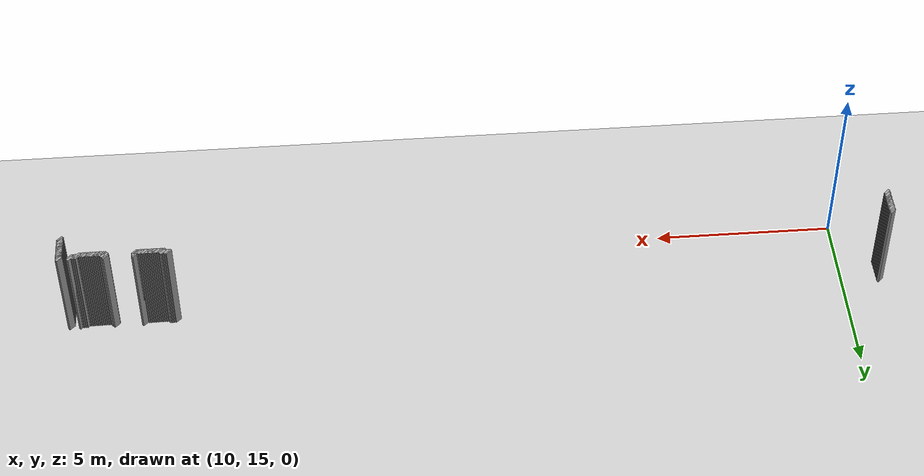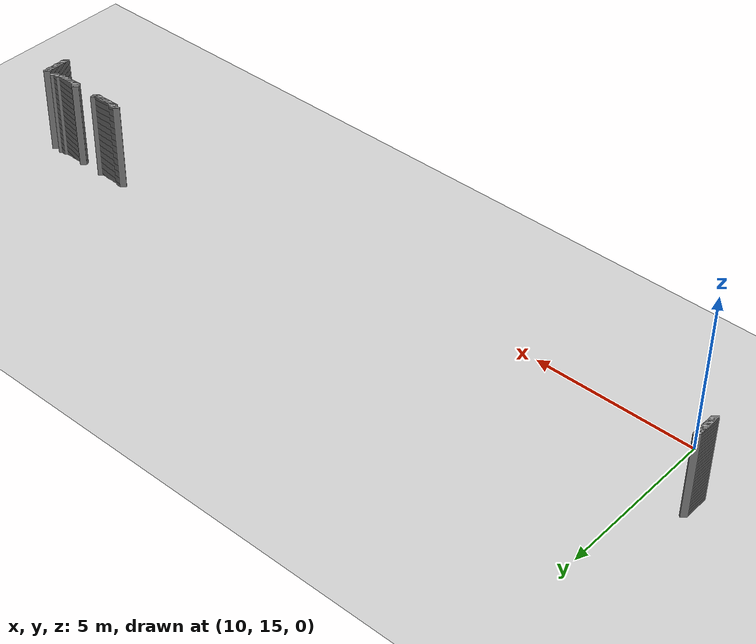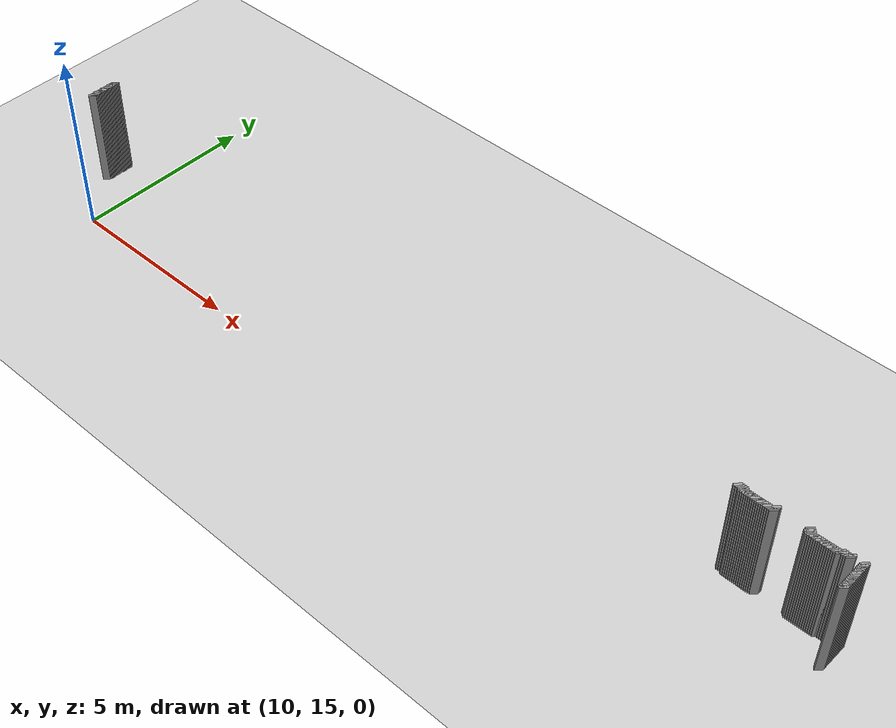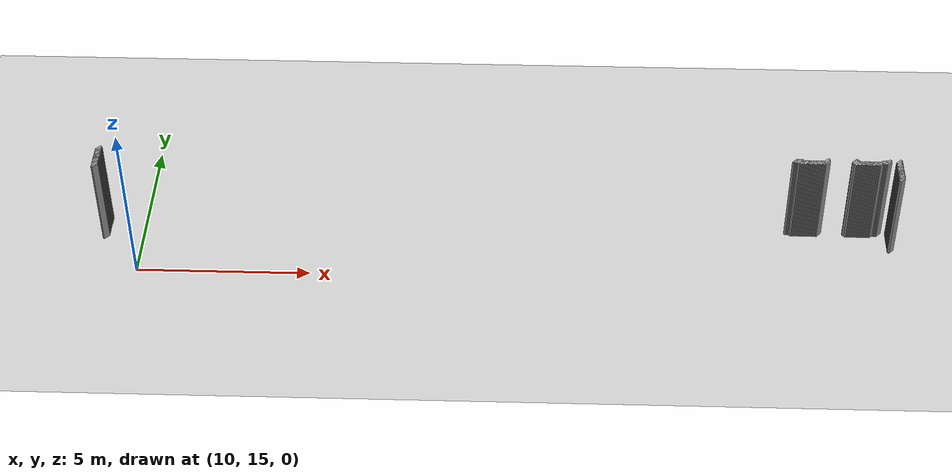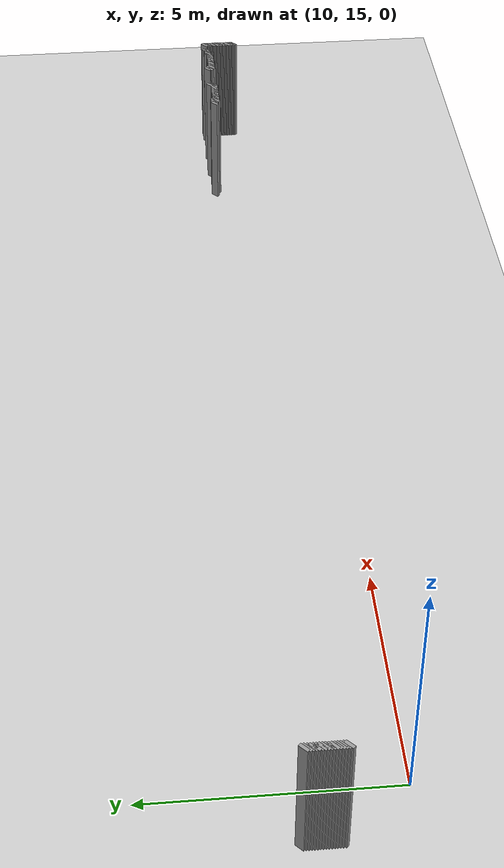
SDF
<sdf version="1.5">
 <world name="default">
  <include><uri>model://ground_plane</uri></include>
  <include><uri>model://sun</uri></include>
  <model name="grey_wall_1026">
   <static>1</static>
   <link name="link">
    <pose>29.7 17.15  1.4 0 0 -0.785398163397</pose>
    <collision name="collision"><geometry><box><size>0.0707106781187 .2  2.8</size></box></geometry></collision>
    <visual name="visual">
     <cast_shadows>0</cast_shadows>
     <geometry><box><size>0.0707106781187 .2  2.8</size></box></geometry>
     <material>
      <script>
       <uri>model://grey_wall/materials/scripts</uri>
       <uri>model://grey_wall/materials/textures</uri>
       <name>vrc/grey_wall</name>
      </script>
     </material>
    </visual>
   </link>
  </model>
  <model name="grey_wall_1027">
   <static>1</static>
   <link name="link">
    <pose>30.5 17.15  1.4 0 0 -0.785398163397</pose>
    <collision name="collision"><geometry><box><size>0.0707106781187 .2  2.8</size></box></geometry></collision>
    <visual name="visual">
     <cast_shadows>0</cast_shadows>
     <geometry><box><size>0.0707106781187 .2  2.8</size></box></geometry>
     <material>
      <script>
       <uri>model://grey_wall/materials/scripts</uri>
       <uri>model://grey_wall/materials/textures</uri>
       <name>vrc/grey_wall</name>
      </script>
     </material>
    </visual>
   </link>
  </model>
  <model name="grey_wall_1028">
   <static>1</static>
   <link name="link">
    <pose>31.45 17.15  1.4 0 0 -0.785398163397</pose>
    <collision name="collision"><geometry><box><size>0.0707106781187 .2  2.8</size></box></geometry></collision>
    <visual name="visual">
     <cast_shadows>0</cast_shadows>
     <geometry><box><size>0.0707106781187 .2  2.8</size></box></geometry>
     <material>
      <script>
       <uri>model://grey_wall/materials/scripts</uri>
       <uri>model://grey_wall/materials/textures</uri>
       <name>vrc/grey_wall</name>
      </script>
     </material>
    </visual>
   </link>
  </model>
  <model name="grey_wall_1029">
   <static>1</static>
   <link name="link">
    <pose>31.75 17.15  1.4 0 0 -0.785398163397</pose>
    <collision name="collision"><geometry><box><size>0.0707106781187 .2  2.8</size></box></geometry></collision>
    <visual name="visual">
     <cast_shadows>0</cast_shadows>
     <geometry><box><size>0.0707106781187 .2  2.8</size></box></geometry>
     <material>
      <script>
       <uri>model://grey_wall/materials/scripts</uri>
       <uri>model://grey_wall/materials/textures</uri>
       <name>vrc/grey_wall</name>
      </script>
     </material>
    </visual>
   </link>
  </model>
  <model name="grey_wall_1030">
   <static>1</static>
   <link name="link">
    <pose>8.9 17.1  1.4 0 0 -0.785398163397</pose>
    <collision name="collision"><geometry><box><size>0.0707106781187 .2  2.8</size></box></geometry></collision>
    <visual name="visual">
     <cast_shadows>0</cast_shadows>
     <geometry><box><size>0.0707106781187 .2  2.8</size></box></geometry>
     <material>
      <script>
       <uri>model://grey_wall/materials/scripts</uri>
       <uri>model://grey_wall/materials/textures</uri>
       <name>vrc/grey_wall</name>
      </script>
     </material>
    </visual>
   </link>
  </model>
  <model name="grey_wall_1031">
   <static>1</static>
   <link name="link">
    <pose>28.8 17.1  1.4 0 0 -0.785398163397</pose>
    <collision name="collision"><geometry><box><size>0.0707106781187 .2  2.8</size></box></geometry></collision>
    <visual name="visual">
     <cast_shadows>0</cast_shadows>
     <geometry><box><size>0.0707106781187 .2  2.8</size></box></geometry>
     <material>
      <script>
       <uri>model://grey_wall/materials/scripts</uri>
       <uri>model://grey_wall/materials/textures</uri>
       <name>vrc/grey_wall</name>
      </script>
     </material>
    </visual>
   </link>
  </model>
  <model name="grey_wall_1032">
   <static>1</static>
   <link name="link">
    <pose>28.85 17.1  1.4 0 0 -0.785398163397</pose>
    <collision name="collision"><geometry><box><size>0.0707106781187 .2  2.8</size></box></geometry></collision>
    <visual name="visual">
     <cast_shadows>0</cast_shadows>
     <geometry><box><size>0.0707106781187 .2  2.8</size></box></geometry>
     <material>
      <script>
       <uri>model://grey_wall/materials/scripts</uri>
       <uri>model://grey_wall/materials/textures</uri>
       <name>vrc/grey_wall</name>
      </script>
     </material>
    </visual>
   </link>
  </model>
  <model name="grey_wall_1033">
   <static>1</static>
   <link name="link">
    <pose>28.9 17.1  1.4 0 0 -0.785398163397</pose>
    <collision name="collision"><geometry><box><size>0.0707106781187 .2  2.8</size></box></geometry></collision>
    <visual name="visual">
     <cast_shadows>0</cast_shadows>
     <geometry><box><size>0.0707106781187 .2  2.8</size></box></geometry>
     <material>
      <script>
       <uri>model://grey_wall/materials/scripts</uri>
       <uri>model://grey_wall/materials/textures</uri>
       <name>vrc/grey_wall</name>
      </script>
     </material>
    </visual>
   </link>
  </model>
  <model name="grey_wall_1034">
   <static>1</static>
   <link name="link">
    <pose>28.95 17.1  1.4 0 0 -0.785398163397</pose>
    <collision name="collision"><geometry><box><size>0.0707106781187 .2  2.8</size></box></geometry></collision>
    <visual name="visual">
     <cast_shadows>0</cast_shadows>
     <geometry><box><size>0.0707106781187 .2  2.8</size></box></geometry>
     <material>
      <script>
       <uri>model://grey_wall/materials/scripts</uri>
       <uri>model://grey_wall/materials/textures</uri>
       <name>vrc/grey_wall</name>
      </script>
     </material>
    </visual>
   </link>
  </model>
  <model name="grey_wall_1035">
   <static>1</static>
   <link name="link">
    <pose>29.7 17.1  1.4 0 0 -0.785398163397</pose>
    <collision name="collision"><geometry><box><size>0.0707106781187 .2  2.8</size></box></geometry></collision>
    <visual name="visual">
     <cast_shadows>0</cast_shadows>
     <geometry><box><size>0.0707106781187 .2  2.8</size></box></geometry>
     <material>
      <script>
       <uri>model://grey_wall/materials/scripts</uri>
       <uri>model://grey_wall/materials/textures</uri>
       <name>vrc/grey_wall</name>
      </script>
     </material>
    </visual>
   </link>
  </model>
  <model name="grey_wall_1036">
   <static>1</static>
   <link name="link">
    <pose>30.5 17.1  1.4 0 0 -0.785398163397</pose>
    <collision name="collision"><geometry><box><size>0.0707106781187 .2  2.8</size></box></geometry></collision>
    <visual name="visual">
     <cast_shadows>0</cast_shadows>
     <geometry><box><size>0.0707106781187 .2  2.8</size></box></geometry>
     <material>
      <script>
       <uri>model://grey_wall/materials/scripts</uri>
       <uri>model://grey_wall/materials/textures</uri>
       <name>vrc/grey_wall</name>
      </script>
     </material>
    </visual>
   </link>
  </model>
  <model name="grey_wall_1037">
   <static>1</static>
   <link name="link">
    <pose>30.55 17.1  1.4 0 0 -0.785398163397</pose>
    <collision name="collision"><geometry><box><size>0.0707106781187 .2  2.8</size></box></geometry></collision>
    <visual name="visual">
     <cast_shadows>0</cast_shadows>
     <geometry><box><size>0.0707106781187 .2  2.8</size></box></geometry>
     <material>
      <script>
       <uri>model://grey_wall/materials/scripts</uri>
       <uri>model://grey_wall/materials/textures</uri>
       <name>vrc/grey_wall</name>
      </script>
     </material>
    </visual>
   </link>
  </model>
  <model name="grey_wall_1038">
   <static>1</static>
   <link name="link">
    <pose>31.25 17.1  1.4 0 0 -0.785398163397</pose>
    <collision name="collision"><geometry><box><size>0.0707106781187 .2  2.8</size></box></geometry></collision>
    <visual name="visual">
     <cast_shadows>0</cast_shadows>
     <geometry><box><size>0.0707106781187 .2  2.8</size></box></geometry>
     <material>
      <script>
       <uri>model://grey_wall/materials/scripts</uri>
       <uri>model://grey_wall/materials/textures</uri>
       <name>vrc/grey_wall</name>
      </script>
     </material>
    </visual>
   </link>
  </model>
  <model name="grey_wall_1039">
   <static>1</static>
   <link name="link">
    <pose>31.3 17.1  1.4 0 0 -0.785398163397</pose>
    <collision name="collision"><geometry><box><size>0.0707106781187 .2  2.8</size></box></geometry></collision>
    <visual name="visual">
     <cast_shadows>0</cast_shadows>
     <geometry><box><size>0.0707106781187 .2  2.8</size></box></geometry>
     <material>
      <script>
       <uri>model://grey_wall/materials/scripts</uri>
       <uri>model://grey_wall/materials/textures</uri>
       <name>vrc/grey_wall</name>
      </script>
     </material>
    </visual>
   </link>
  </model>
  <model name="grey_wall_1040">
   <static>1</static>
   <link name="link">
    <pose>31.35 17.1  1.4 0 0 -0.785398163397</pose>
    <collision name="collision"><geometry><box><size>0.0707106781187 .2  2.8</size></box></geometry></collision>
    <visual name="visual">
     <cast_shadows>0</cast_shadows>
     <geometry><box><size>0.0707106781187 .2  2.8</size></box></geometry>
     <material>
      <script>
       <uri>model://grey_wall/materials/scripts</uri>
       <uri>model://grey_wall/materials/textures</uri>
       <name>vrc/grey_wall</name>
      </script>
     </material>
    </visual>
   </link>
  </model>
  <model name="grey_wall_1041">
   <static>1</static>
   <link name="link">
    <pose>31.4 17.1  1.4 0 0 -0.785398163397</pose>
    <collision name="collision"><geometry><box><size>0.0707106781187 .2  2.8</size></box></geometry></collision>
    <visual name="visual">
     <cast_shadows>0</cast_shadows>
     <geometry><box><size>0.0707106781187 .2  2.8</size></box></geometry>
     <material>
      <script>
       <uri>model://grey_wall/materials/scripts</uri>
       <uri>model://grey_wall/materials/textures</uri>
       <name>vrc/grey_wall</name>
      </script>
     </material>
    </visual>
   </link>
  </model>
  <model name="grey_wall_1042">
   <static>1</static>
   <link name="link">
    <pose>31.45 17.1  1.4 0 0 -0.785398163397</pose>
    <collision name="collision"><geometry><box><size>0.0707106781187 .2  2.8</size></box></geometry></collision>
    <visual name="visual">
     <cast_shadows>0</cast_shadows>
     <geometry><box><size>0.0707106781187 .2  2.8</size></box></geometry>
     <material>
      <script>
       <uri>model://grey_wall/materials/scripts</uri>
       <uri>model://grey_wall/materials/textures</uri>
       <name>vrc/grey_wall</name>
      </script>
     </material>
    </visual>
   </link>
  </model>
  <model name="grey_wall_1043">
   <static>1</static>
   <link name="link">
    <pose>31.75 17.1  1.4 0 0 -0.785398163397</pose>
    <collision name="collision"><geometry><box><size>0.0707106781187 .2  2.8</size></box></geometry></collision>
    <visual name="visual">
     <cast_shadows>0</cast_shadows>
     <geometry><box><size>0.0707106781187 .2  2.8</size></box></geometry>
     <material>
      <script>
       <uri>model://grey_wall/materials/scripts</uri>
       <uri>model://grey_wall/materials/textures</uri>
       <name>vrc/grey_wall</name>
      </script>
     </material>
    </visual>
   </link>
  </model>
  <model name="grey_wall_1044">
   <static>1</static>
   <link name="link">
    <pose>8.9 17.05  1.4 0 0 -0.785398163397</pose>
    <collision name="collision"><geometry><box><size>0.0707106781187 .2  2.8</size></box></geometry></collision>
    <visual name="visual">
     <cast_shadows>0</cast_shadows>
     <geometry><box><size>0.0707106781187 .2  2.8</size></box></geometry>
     <material>
      <script>
       <uri>model://grey_wall/materials/scripts</uri>
       <uri>model://grey_wall/materials/textures</uri>
       <name>vrc/grey_wall</name>
      </script>
     </material>
    </visual>
   </link>
  </model>
  <model name="grey_wall_1045">
   <static>1</static>
   <link name="link">
    <pose>28.95 17.05  1.4 0 0 -0.785398163397</pose>
    <collision name="collision"><geometry><box><size>0.0707106781187 .2  2.8</size></box></geometry></collision>
    <visual name="visual">
     <cast_shadows>0</cast_shadows>
     <geometry><box><size>0.0707106781187 .2  2.8</size></box></geometry>
     <material>
      <script>
       <uri>model://grey_wall/materials/scripts</uri>
       <uri>model://grey_wall/materials/textures</uri>
       <name>vrc/grey_wall</name>
      </script>
     </material>
    </visual>
   </link>
  </model>
  <model name="grey_wall_1046">
   <static>1</static>
   <link name="link">
    <pose>29.0 17.05  1.4 0 0 -0.785398163397</pose>
    <collision name="collision"><geometry><box><size>0.0707106781187 .2  2.8</size></box></geometry></collision>
    <visual name="visual">
     <cast_shadows>0</cast_shadows>
     <geometry><box><size>0.0707106781187 .2  2.8</size></box></geometry>
     <material>
      <script>
       <uri>model://grey_wall/materials/scripts</uri>
       <uri>model://grey_wall/materials/textures</uri>
       <name>vrc/grey_wall</name>
      </script>
     </material>
    </visual>
   </link>
  </model>
  <model name="grey_wall_1047">
   <static>1</static>
   <link name="link">
    <pose>29.05 17.05  1.4 0 0 -0.785398163397</pose>
    <collision name="collision"><geometry><box><size>0.0707106781187 .2  2.8</size></box></geometry></collision>
    <visual name="visual">
     <cast_shadows>0</cast_shadows>
     <geometry><box><size>0.0707106781187 .2  2.8</size></box></geometry>
     <material>
      <script>
       <uri>model://grey_wall/materials/scripts</uri>
       <uri>model://grey_wall/materials/textures</uri>
       <name>vrc/grey_wall</name>
      </script>
     </material>
    </visual>
   </link>
  </model>
  <model name="grey_wall_1048">
   <static>1</static>
   <link name="link">
    <pose>29.1 17.05  1.4 0 0 -0.785398163397</pose>
    <collision name="collision"><geometry><box><size>0.0707106781187 .2  2.8</size></box></geometry></collision>
    <visual name="visual">
     <cast_shadows>0</cast_shadows>
     <geometry><box><size>0.0707106781187 .2  2.8</size></box></geometry>
     <material>
      <script>
       <uri>model://grey_wall/materials/scripts</uri>
       <uri>model://grey_wall/materials/textures</uri>
       <name>vrc/grey_wall</name>
      </script>
     </material>
    </visual>
   </link>
  </model>
  <model name="grey_wall_1049">
   <static>1</static>
   <link name="link">
    <pose>29.15 17.05  1.4 0 0 -0.785398163397</pose>
    <collision name="collision"><geometry><box><size>0.0707106781187 .2  2.8</size></box></geometry></collision>
    <visual name="visual">
     <cast_shadows>0</cast_shadows>
     <geometry><box><size>0.0707106781187 .2  2.8</size></box></geometry>
     <material>
      <script>
       <uri>model://grey_wall/materials/scripts</uri>
       <uri>model://grey_wall/materials/textures</uri>
       <name>vrc/grey_wall</name>
      </script>
     </material>
    </visual>
   </link>
  </model>
  <model name="grey_wall_1050">
   <static>1</static>
   <link name="link">
    <pose>29.2 17.05  1.4 0 0 -0.785398163397</pose>
    <collision name="collision"><geometry><box><size>0.0707106781187 .2  2.8</size></box></geometry></collision>
    <visual name="visual">
     <cast_shadows>0</cast_shadows>
     <geometry><box><size>0.0707106781187 .2  2.8</size></box></geometry>
     <material>
      <script>
       <uri>model://grey_wall/materials/scripts</uri>
       <uri>model://grey_wall/materials/textures</uri>
       <name>vrc/grey_wall</name>
      </script>
     </material>
    </visual>
   </link>
  </model>
  <model name="grey_wall_1051">
   <static>1</static>
   <link name="link">
    <pose>29.25 17.05  1.4 0 0 -0.785398163397</pose>
    <collision name="collision"><geometry><box><size>0.0707106781187 .2  2.8</size></box></geometry></collision>
    <visual name="visual">
     <cast_shadows>0</cast_shadows>
     <geometry><box><size>0.0707106781187 .2  2.8</size></box></geometry>
     <material>
      <script>
       <uri>model://grey_wall/materials/scripts</uri>
       <uri>model://grey_wall/materials/textures</uri>
       <name>vrc/grey_wall</name>
      </script>
     </material>
    </visual>
   </link>
  </model>
  <model name="grey_wall_1052">
   <static>1</static>
   <link name="link">
    <pose>29.3 17.05  1.4 0 0 -0.785398163397</pose>
    <collision name="collision"><geometry><box><size>0.0707106781187 .2  2.8</size></box></geometry></collision>
    <visual name="visual">
     <cast_shadows>0</cast_shadows>
     <geometry><box><size>0.0707106781187 .2  2.8</size></box></geometry>
     <material>
      <script>
       <uri>model://grey_wall/materials/scripts</uri>
       <uri>model://grey_wall/materials/textures</uri>
       <name>vrc/grey_wall</name>
      </script>
     </material>
    </visual>
   </link>
  </model>
  <model name="grey_wall_1053">
   <static>1</static>
   <link name="link">
    <pose>29.35 17.05  1.4 0 0 -0.785398163397</pose>
    <collision name="collision"><geometry><box><size>0.0707106781187 .2  2.8</size></box></geometry></collision>
    <visual name="visual">
     <cast_shadows>0</cast_shadows>
     <geometry><box><size>0.0707106781187 .2  2.8</size></box></geometry>
     <material>
      <script>
       <uri>model://grey_wall/materials/scripts</uri>
       <uri>model://grey_wall/materials/textures</uri>
       <name>vrc/grey_wall</name>
      </script>
     </material>
    </visual>
   </link>
  </model>
  <model name="grey_wall_1054">
   <static>1</static>
   <link name="link">
    <pose>29.4 17.05  1.4 0 0 -0.785398163397</pose>
    <collision name="collision"><geometry><box><size>0.0707106781187 .2  2.8</size></box></geometry></collision>
    <visual name="visual">
     <cast_shadows>0</cast_shadows>
     <geometry><box><size>0.0707106781187 .2  2.8</size></box></geometry>
     <material>
      <script>
       <uri>model://grey_wall/materials/scripts</uri>
       <uri>model://grey_wall/materials/textures</uri>
       <name>vrc/grey_wall</name>
      </script>
     </material>
    </visual>
   </link>
  </model>
  <model name="grey_wall_1055">
   <static>1</static>
   <link name="link">
    <pose>29.45 17.05  1.4 0 0 -0.785398163397</pose>
    <collision name="collision"><geometry><box><size>0.0707106781187 .2  2.8</size></box></geometry></collision>
    <visual name="visual">
     <cast_shadows>0</cast_shadows>
     <geometry><box><size>0.0707106781187 .2  2.8</size></box></geometry>
     <material>
      <script>
       <uri>model://grey_wall/materials/scripts</uri>
       <uri>model://grey_wall/materials/textures</uri>
       <name>vrc/grey_wall</name>
      </script>
     </material>
    </visual>
   </link>
  </model>
  <model name="grey_wall_1056">
   <static>1</static>
   <link name="link">
    <pose>29.5 17.05  1.4 0 0 -0.785398163397</pose>
    <collision name="collision"><geometry><box><size>0.0707106781187 .2  2.8</size></box></geometry></collision>
    <visual name="visual">
     <cast_shadows>0</cast_shadows>
     <geometry><box><size>0.0707106781187 .2  2.8</size></box></geometry>
     <material>
      <script>
       <uri>model://grey_wall/materials/scripts</uri>
       <uri>model://grey_wall/materials/textures</uri>
       <name>vrc/grey_wall</name>
      </script>
     </material>
    </visual>
   </link>
  </model>
  <model name="grey_wall_1057">
   <static>1</static>
   <link name="link">
    <pose>29.55 17.05  1.4 0 0 -0.785398163397</pose>
    <collision name="collision"><geometry><box><size>0.0707106781187 .2  2.8</size></box></geometry></collision>
    <visual name="visual">
     <cast_shadows>0</cast_shadows>
     <geometry><box><size>0.0707106781187 .2  2.8</size></box></geometry>
     <material>
      <script>
       <uri>model://grey_wall/materials/scripts</uri>
       <uri>model://grey_wall/materials/textures</uri>
       <name>vrc/grey_wall</name>
      </script>
     </material>
    </visual>
   </link>
  </model>
  <model name="grey_wall_1058">
   <static>1</static>
   <link name="link">
    <pose>29.6 17.05  1.4 0 0 -0.785398163397</pose>
    <collision name="collision"><geometry><box><size>0.0707106781187 .2  2.8</size></box></geometry></collision>
    <visual name="visual">
     <cast_shadows>0</cast_shadows>
     <geometry><box><size>0.0707106781187 .2  2.8</size></box></geometry>
     <material>
      <script>
       <uri>model://grey_wall/materials/scripts</uri>
       <uri>model://grey_wall/materials/textures</uri>
       <name>vrc/grey_wall</name>
      </script>
     </material>
    </visual>
   </link>
  </model>
  <model name="grey_wall_1059">
   <static>1</static>
   <link name="link">
    <pose>29.65 17.05  1.4 0 0 -0.785398163397</pose>
    <collision name="collision"><geometry><box><size>0.0707106781187 .2  2.8</size></box></geometry></collision>
    <visual name="visual">
     <cast_shadows>0</cast_shadows>
     <geometry><box><size>0.0707106781187 .2  2.8</size></box></geometry>
     <material>
      <script>
       <uri>model://grey_wall/materials/scripts</uri>
       <uri>model://grey_wall/materials/textures</uri>
       <name>vrc/grey_wall</name>
      </script>
     </material>
    </visual>
   </link>
  </model>
  <model name="grey_wall_1060">
   <static>1</static>
   <link name="link">
    <pose>29.7 17.05  1.4 0 0 -0.785398163397</pose>
    <collision name="collision"><geometry><box><size>0.0707106781187 .2  2.8</size></box></geometry></collision>
    <visual name="visual">
     <cast_shadows>0</cast_shadows>
     <geometry><box><size>0.0707106781187 .2  2.8</size></box></geometry>
     <material>
      <script>
       <uri>model://grey_wall/materials/scripts</uri>
       <uri>model://grey_wall/materials/textures</uri>
       <name>vrc/grey_wall</name>
      </script>
     </material>
    </visual>
   </link>
  </model>
  <model name="grey_wall_1061">
   <static>1</static>
   <link name="link">
    <pose>30.55 17.05  1.4 0 0 -0.785398163397</pose>
    <collision name="collision"><geometry><box><size>0.0707106781187 .2  2.8</size></box></geometry></collision>
    <visual name="visual">
     <cast_shadows>0</cast_shadows>
     <geometry><box><size>0.0707106781187 .2  2.8</size></box></geometry>
     <material>
      <script>
       <uri>model://grey_wall/materials/scripts</uri>
       <uri>model://grey_wall/materials/textures</uri>
       <name>vrc/grey_wall</name>
      </script>
     </material>
    </visual>
   </link>
  </model>
  <model name="grey_wall_1062">
   <static>1</static>
   <link name="link">
    <pose>30.6 17.05  1.4 0 0 -0.785398163397</pose>
    <collision name="collision"><geometry><box><size>0.0707106781187 .2  2.8</size></box></geometry></collision>
    <visual name="visual">
     <cast_shadows>0</cast_shadows>
     <geometry><box><size>0.0707106781187 .2  2.8</size></box></geometry>
     <material>
      <script>
       <uri>model://grey_wall/materials/scripts</uri>
       <uri>model://grey_wall/materials/textures</uri>
       <name>vrc/grey_wall</name>
      </script>
     </material>
    </visual>
   </link>
  </model>
  <model name="grey_wall_1063">
   <static>1</static>
   <link name="link">
    <pose>30.65 17.05  1.4 0 0 -0.785398163397</pose>
    <collision name="collision"><geometry><box><size>0.0707106781187 .2  2.8</size></box></geometry></collision>
    <visual name="visual">
     <cast_shadows>0</cast_shadows>
     <geometry><box><size>0.0707106781187 .2  2.8</size></box></geometry>
     <material>
      <script>
       <uri>model://grey_wall/materials/scripts</uri>
       <uri>model://grey_wall/materials/textures</uri>
       <name>vrc/grey_wall</name>
      </script>
     </material>
    </visual>
   </link>
  </model>
  <model name="grey_wall_1064">
   <static>1</static>
   <link name="link">
    <pose>30.7 17.05  1.4 0 0 -0.785398163397</pose>
    <collision name="collision"><geometry><box><size>0.0707106781187 .2  2.8</size></box></geometry></collision>
    <visual name="visual">
     <cast_shadows>0</cast_shadows>
     <geometry><box><size>0.0707106781187 .2  2.8</size></box></geometry>
     <material>
      <script>
       <uri>model://grey_wall/materials/scripts</uri>
       <uri>model://grey_wall/materials/textures</uri>
       <name>vrc/grey_wall</name>
      </script>
     </material>
    </visual>
   </link>
  </model>
  <model name="grey_wall_1065">
   <static>1</static>
   <link name="link">
    <pose>30.75 17.05  1.4 0 0 -0.785398163397</pose>
    <collision name="collision"><geometry><box><size>0.0707106781187 .2  2.8</size></box></geometry></collision>
    <visual name="visual">
     <cast_shadows>0</cast_shadows>
     <geometry><box><size>0.0707106781187 .2  2.8</size></box></geometry>
     <material>
      <script>
       <uri>model://grey_wall/materials/scripts</uri>
       <uri>model://grey_wall/materials/textures</uri>
       <name>vrc/grey_wall</name>
      </script>
     </material>
    </visual>
   </link>
  </model>
  <model name="grey_wall_1066">
   <static>1</static>
   <link name="link">
    <pose>30.8 17.05  1.4 0 0 -0.785398163397</pose>
    <collision name="collision"><geometry><box><size>0.0707106781187 .2  2.8</size></box></geometry></collision>
    <visual name="visual">
     <cast_shadows>0</cast_shadows>
     <geometry><box><size>0.0707106781187 .2  2.8</size></box></geometry>
     <material>
      <script>
       <uri>model://grey_wall/materials/scripts</uri>
       <uri>model://grey_wall/materials/textures</uri>
       <name>vrc/grey_wall</name>
      </script>
     </material>
    </visual>
   </link>
  </model>
  <model name="grey_wall_1067">
   <static>1</static>
   <link name="link">
    <pose>30.85 17.05  1.4 0 0 -0.785398163397</pose>
    <collision name="collision"><geometry><box><size>0.0707106781187 .2  2.8</size></box></geometry></collision>
    <visual name="visual">
     <cast_shadows>0</cast_shadows>
     <geometry><box><size>0.0707106781187 .2  2.8</size></box></geometry>
     <material>
      <script>
       <uri>model://grey_wall/materials/scripts</uri>
       <uri>model://grey_wall/materials/textures</uri>
       <name>vrc/grey_wall</name>
      </script>
     </material>
    </visual>
   </link>
  </model>
  <model name="grey_wall_1068">
   <static>1</static>
   <link name="link">
    <pose>30.9 17.05  1.4 0 0 -0.785398163397</pose>
    <collision name="collision"><geometry><box><size>0.0707106781187 .2  2.8</size></box></geometry></collision>
    <visual name="visual">
     <cast_shadows>0</cast_shadows>
     <geometry><box><size>0.0707106781187 .2  2.8</size></box></geometry>
     <material>
      <script>
       <uri>model://grey_wall/materials/scripts</uri>
       <uri>model://grey_wall/materials/textures</uri>
       <name>vrc/grey_wall</name>
      </script>
     </material>
    </visual>
   </link>
  </model>
  <model name="grey_wall_1069">
   <static>1</static>
   <link name="link">
    <pose>30.95 17.05  1.4 0 0 -0.785398163397</pose>
    <collision name="collision"><geometry><box><size>0.0707106781187 .2  2.8</size></box></geometry></collision>
    <visual name="visual">
     <cast_shadows>0</cast_shadows>
     <geometry><box><size>0.0707106781187 .2  2.8</size></box></geometry>
     <material>
      <script>
       <uri>model://grey_wall/materials/scripts</uri>
       <uri>model://grey_wall/materials/textures</uri>
       <name>vrc/grey_wall</name>
      </script>
     </material>
    </visual>
   </link>
  </model>
  <model name="grey_wall_1070">
   <static>1</static>
   <link name="link">
    <pose>31.0 17.05  1.4 0 0 -0.785398163397</pose>
    <collision name="collision"><geometry><box><size>0.0707106781187 .2  2.8</size></box></geometry></collision>
    <visual name="visual">
     <cast_shadows>0</cast_shadows>
     <geometry><box><size>0.0707106781187 .2  2.8</size></box></geometry>
     <material>
      <script>
       <uri>model://grey_wall/materials/scripts</uri>
       <uri>model://grey_wall/materials/textures</uri>
       <name>vrc/grey_wall</name>
      </script>
     </material>
    </visual>
   </link>
  </model>
  <model name="grey_wall_1071">
   <static>1</static>
   <link name="link">
    <pose>31.05 17.05  1.4 0 0 -0.785398163397</pose>
    <collision name="collision"><geometry><box><size>0.0707106781187 .2  2.8</size></box></geometry></collision>
    <visual name="visual">
     <cast_shadows>0</cast_shadows>
     <geometry><box><size>0.0707106781187 .2  2.8</size></box></geometry>
     <material>
      <script>
       <uri>model://grey_wall/materials/scripts</uri>
       <uri>model://grey_wall/materials/textures</uri>
       <name>vrc/grey_wall</name>
      </script>
     </material>
    </visual>
   </link>
  </model>
  <model name="grey_wall_1072">
   <static>1</static>
   <link name="link">
    <pose>31.1 17.05  1.4 0 0 -0.785398163397</pose>
    <collision name="collision"><geometry><box><size>0.0707106781187 .2  2.8</size></box></geometry></collision>
    <visual name="visual">
     <cast_shadows>0</cast_shadows>
     <geometry><box><size>0.0707106781187 .2  2.8</size></box></geometry>
     <material>
      <script>
       <uri>model://grey_wall/materials/scripts</uri>
       <uri>model://grey_wall/materials/textures</uri>
       <name>vrc/grey_wall</name>
      </script>
     </material>
    </visual>
   </link>
  </model>
  <model name="grey_wall_1073">
   <static>1</static>
   <link name="link">
    <pose>31.15 17.05  1.4 0 0 -0.785398163397</pose>
    <collision name="collision"><geometry><box><size>0.0707106781187 .2  2.8</size></box></geometry></collision>
    <visual name="visual">
     <cast_shadows>0</cast_shadows>
     <geometry><box><size>0.0707106781187 .2  2.8</size></box></geometry>
     <material>
      <script>
       <uri>model://grey_wall/materials/scripts</uri>
       <uri>model://grey_wall/materials/textures</uri>
       <name>vrc/grey_wall</name>
      </script>
     </material>
    </visual>
   </link>
  </model>
  <model name="grey_wall_1074">
   <static>1</static>
   <link name="link">
    <pose>31.2 17.05  1.4 0 0 -0.785398163397</pose>
    <collision name="collision"><geometry><box><size>0.0707106781187 .2  2.8</size></box></geometry></collision>
    <visual name="visual">
     <cast_shadows>0</cast_shadows>
     <geometry><box><size>0.0707106781187 .2  2.8</size></box></geometry>
     <material>
      <script>
       <uri>model://grey_wall/materials/scripts</uri>
       <uri>model://grey_wall/materials/textures</uri>
       <name>vrc/grey_wall</name>
      </script>
     </material>
    </visual>
   </link>
  </model>
  <model name="grey_wall_1075">
   <static>1</static>
   <link name="link">
    <pose>31.25 17.05  1.4 0 0 -0.785398163397</pose>
    <collision name="collision"><geometry><box><size>0.0707106781187 .2  2.8</size></box></geometry></collision>
    <visual name="visual">
     <cast_shadows>0</cast_shadows>
     <geometry><box><size>0.0707106781187 .2  2.8</size></box></geometry>
     <material>
      <script>
       <uri>model://grey_wall/materials/scripts</uri>
       <uri>model://grey_wall/materials/textures</uri>
       <name>vrc/grey_wall</name>
      </script>
     </material>
    </visual>
   </link>
  </model>
  <model name="grey_wall_1076">
   <static>1</static>
   <link name="link">
    <pose>31.75 17.05  1.4 0 0 -0.785398163397</pose>
    <collision name="collision"><geometry><box><size>0.0707106781187 .2  2.8</size></box></geometry></collision>
    <visual name="visual">
     <cast_shadows>0</cast_shadows>
     <geometry><box><size>0.0707106781187 .2  2.8</size></box></geometry>
     <material>
      <script>
       <uri>model://grey_wall/materials/scripts</uri>
       <uri>model://grey_wall/materials/textures</uri>
       <name>vrc/grey_wall</name>
      </script>
     </material>
    </visual>
   </link>
  </model>
  <model name="grey_wall_1077">
   <static>1</static>
   <link name="link">
    <pose>8.9 17.0  1.4 0 0 -0.785398163397</pose>
    <collision name="collision"><geometry><box><size>0.0707106781187 .2  2.8</size></box></geometry></collision>
    <visual name="visual">
     <cast_shadows>0</cast_shadows>
     <geometry><box><size>0.0707106781187 .2  2.8</size></box></geometry>
     <material>
      <script>
       <uri>model://grey_wall/materials/scripts</uri>
       <uri>model://grey_wall/materials/textures</uri>
       <name>vrc/grey_wall</name>
      </script>
     </material>
    </visual>
   </link>
  </model>
  <model name="grey_wall_1078">
   <static>1</static>
   <link name="link">
    <pose>31.75 17.0  1.4 0 0 -0.785398163397</pose>
    <collision name="collision"><geometry><box><size>0.0707106781187 .2  2.8</size></box></geometry></collision>
    <visual name="visual">
     <cast_shadows>0</cast_shadows>
     <geometry><box><size>0.0707106781187 .2  2.8</size></box></geometry>
     <material>
      <script>
       <uri>model://grey_wall/materials/scripts</uri>
       <uri>model://grey_wall/materials/textures</uri>
       <name>vrc/grey_wall</name>
      </script>
     </material>
    </visual>
   </link>
  </model>
  <model name="grey_wall_1079">
   <static>1</static>
   <link name="link">
    <pose>8.9 16.95  1.4 0 0 -0.785398163397</pose>
    <collision name="collision"><geometry><box><size>0.0707106781187 .2  2.8</size></box></geometry></collision>
    <visual name="visual">
     <cast_shadows>0</cast_shadows>
     <geometry><box><size>0.0707106781187 .2  2.8</size></box></geometry>
     <material>
      <script>
       <uri>model://grey_wall/materials/scripts</uri>
       <uri>model://grey_wall/materials/textures</uri>
       <name>vrc/grey_wall</name>
      </script>
     </material>
    </visual>
   </link>
  </model>
  <model name="grey_wall_1080">
   <static>1</static>
   <link name="link">
    <pose>31.75 16.95  1.4 0 0 -0.785398163397</pose>
    <collision name="collision"><geometry><box><size>0.0707106781187 .2  2.8</size></box></geometry></collision>
    <visual name="visual">
     <cast_shadows>0</cast_shadows>
     <geometry><box><size>0.0707106781187 .2  2.8</size></box></geometry>
     <material>
      <script>
       <uri>model://grey_wall/materials/scripts</uri>
       <uri>model://grey_wall/materials/textures</uri>
       <name>vrc/grey_wall</name>
      </script>
     </material>
    </visual>
   </link>
  </model>
  <model name="grey_wall_1081">
   <static>1</static>
   <link name="link">
    <pose>8.9 16.9  1.4 0 0 -0.785398163397</pose>
    <collision name="collision"><geometry><box><size>0.0707106781187 .2  2.8</size></box></geometry></collision>
    <visual name="visual">
     <cast_shadows>0</cast_shadows>
     <geometry><box><size>0.0707106781187 .2  2.8</size></box></geometry>
     <material>
      <script>
       <uri>model://grey_wall/materials/scripts</uri>
       <uri>model://grey_wall/materials/textures</uri>
       <name>vrc/grey_wall</name>
      </script>
     </material>
    </visual>
   </link>
  </model>
  <model name="grey_wall_1082">
   <static>1</static>
   <link name="link">
    <pose>31.75 16.9  1.4 0 0 -0.785398163397</pose>
    <collision name="collision"><geometry><box><size>0.0707106781187 .2  2.8</size></box></geometry></collision>
    <visual name="visual">
     <cast_shadows>0</cast_shadows>
     <geometry><box><size>0.0707106781187 .2  2.8</size></box></geometry>
     <material>
      <script>
       <uri>model://grey_wall/materials/scripts</uri>
       <uri>model://grey_wall/materials/textures</uri>
       <name>vrc/grey_wall</name>
      </script>
     </material>
    </visual>
   </link>
  </model>
  <model name="grey_wall_1083">
   <static>1</static>
   <link name="link">
    <pose>8.9 16.85  1.4 0 0 -0.785398163397</pose>
    <collision name="collision"><geometry><box><size>0.0707106781187 .2  2.8</size></box></geometry></collision>
    <visual name="visual">
     <cast_shadows>0</cast_shadows>
     <geometry><box><size>0.0707106781187 .2  2.8</size></box></geometry>
     <material>
      <script>
       <uri>model://grey_wall/materials/scripts</uri>
       <uri>model://grey_wall/materials/textures</uri>
       <name>vrc/grey_wall</name>
      </script>
     </material>
    </visual>
   </link>
  </model>
  <model name="grey_wall_1084">
   <static>1</static>
   <link name="link">
    <pose>31.75 16.85  1.4 0 0 -0.785398163397</pose>
    <collision name="collision"><geometry><box><size>0.0707106781187 .2  2.8</size></box></geometry></collision>
    <visual name="visual">
     <cast_shadows>0</cast_shadows>
     <geometry><box><size>0.0707106781187 .2  2.8</size></box></geometry>
     <material>
      <script>
       <uri>model://grey_wall/materials/scripts</uri>
       <uri>model://grey_wall/materials/textures</uri>
       <name>vrc/grey_wall</name>
      </script>
     </material>
    </visual>
   </link>
  </model>
  <model name="grey_wall_1085">
   <static>1</static>
   <link name="link">
    <pose>8.9 16.8  1.4 0 0 -0.785398163397</pose>
    <collision name="collision"><geometry><box><size>0.0707106781187 .2  2.8</size></box></geometry></collision>
    <visual name="visual">
     <cast_shadows>0</cast_shadows>
     <geometry><box><size>0.0707106781187 .2  2.8</size></box></geometry>
     <material>
      <script>
       <uri>model://grey_wall/materials/scripts</uri>
       <uri>model://grey_wall/materials/textures</uri>
       <name>vrc/grey_wall</name>
      </script>
     </material>
    </visual>
   </link>
  </model>
  <model name="grey_wall_1086">
   <static>1</static>
   <link name="link">
    <pose>31.75 16.8  1.4 0 0 -0.785398163397</pose>
    <collision name="collision"><geometry><box><size>0.0707106781187 .2  2.8</size></box></geometry></collision>
    <visual name="visual">
     <cast_shadows>0</cast_shadows>
     <geometry><box><size>0.0707106781187 .2  2.8</size></box></geometry>
     <material>
      <script>
       <uri>model://grey_wall/materials/scripts</uri>
       <uri>model://grey_wall/materials/textures</uri>
       <name>vrc/grey_wall</name>
      </script>
     </material>
    </visual>
   </link>
  </model>
  <model name="grey_wall_1087">
   <static>1</static>
   <link name="link">
    <pose>8.9 16.75  1.4 0 0 -0.785398163397</pose>
    <collision name="collision"><geometry><box><size>0.0707106781187 .2  2.8</size></box></geometry></collision>
    <visual name="visual">
     <cast_shadows>0</cast_shadows>
     <geometry><box><size>0.0707106781187 .2  2.8</size></box></geometry>
     <material>
      <script>
       <uri>model://grey_wall/materials/scripts</uri>
       <uri>model://grey_wall/materials/textures</uri>
       <name>vrc/grey_wall</name>
      </script>
     </material>
    </visual>
   </link>
  </model>
  <model name="grey_wall_1088">
   <static>1</static>
   <link name="link">
    <pose>31.75 16.75  1.4 0 0 -0.785398163397</pose>
    <collision name="collision"><geometry><box><size>0.0707106781187 .2  2.8</size></box></geometry></collision>
    <visual name="visual">
     <cast_shadows>0</cast_shadows>
     <geometry><box><size>0.0707106781187 .2  2.8</size></box></geometry>
     <material>
      <script>
       <uri>model://grey_wall/materials/scripts</uri>
       <uri>model://grey_wall/materials/textures</uri>
       <name>vrc/grey_wall</name>
      </script>
     </material>
    </visual>
   </link>
  </model>
  <model name="grey_wall_1089">
   <static>1</static>
   <link name="link">
    <pose>8.9 16.7  1.4 0 0 -0.785398163397</pose>
    <collision name="collision"><geometry><box><size>0.0707106781187 .2  2.8</size></box></geometry></collision>
    <visual name="visual">
     <cast_shadows>0</cast_shadows>
     <geometry><box><size>0.0707106781187 .2  2.8</size></box></geometry>
     <material>
      <script>
       <uri>model://grey_wall/materials/scripts</uri>
       <uri>model://grey_wall/materials/textures</uri>
       <name>vrc/grey_wall</name>
      </script>
     </material>
    </visual>
   </link>
  </model>
  <model name="grey_wall_1090">
   <static>1</static>
   <link name="link">
    <pose>31.75 16.7  1.4 0 0 -0.785398163397</pose>
    <collision name="collision"><geometry><box><size>0.0707106781187 .2  2.8</size></box></geometry></collision>
    <visual name="visual">
     <cast_shadows>0</cast_shadows>
     <geometry><box><size>0.0707106781187 .2  2.8</size></box></geometry>
     <material>
      <script>
       <uri>model://grey_wall/materials/scripts</uri>
       <uri>model://grey_wall/materials/textures</uri>
       <name>vrc/grey_wall</name>
      </script>
     </material>
    </visual>
   </link>
  </model>
  <model name="grey_wall_1091">
   <static>1</static>
   <link name="link">
    <pose>8.9 16.65  1.4 0 0 -0.785398163397</pose>
    <collision name="collision"><geometry><box><size>0.0707106781187 .2  2.8</size></box></geometry></collision>
    <visual name="visual">
     <cast_shadows>0</cast_shadows>
     <geometry><box><size>0.0707106781187 .2  2.8</size></box></geometry>
     <material>
      <script>
       <uri>model://grey_wall/materials/scripts</uri>
       <uri>model://grey_wall/materials/textures</uri>
       <name>vrc/grey_wall</name>
      </script>
     </material>
    </visual>
   </link>
  </model>
  <model name="grey_wall_1092">
   <static>1</static>
   <link name="link">
    <pose>31.75 16.65  1.4 0 0 -0.785398163397</pose>
    <collision name="collision"><geometry><box><size>0.0707106781187 .2  2.8</size></box></geometry></collision>
    <visual name="visual">
     <cast_shadows>0</cast_shadows>
     <geometry><box><size>0.0707106781187 .2  2.8</size></box></geometry>
     <material>
      <script>
       <uri>model://grey_wall/materials/scripts</uri>
       <uri>model://grey_wall/materials/textures</uri>
       <name>vrc/grey_wall</name>
      </script>
     </material>
    </visual>
   </link>
  </model>
  <model name="grey_wall_1093">
   <static>1</static>
   <link name="link">
    <pose>8.9 16.6  1.4 0 0 -0.785398163397</pose>
    <collision name="collision"><geometry><box><size>0.0707106781187 .2  2.8</size></box></geometry></collision>
    <visual name="visual">
     <cast_shadows>0</cast_shadows>
     <geometry><box><size>0.0707106781187 .2  2.8</size></box></geometry>
     <material>
      <script>
       <uri>model://grey_wall/materials/scripts</uri>
       <uri>model://grey_wall/materials/textures</uri>
       <name>vrc/grey_wall</name>
      </script>
     </material>
    </visual>
   </link>
  </model>
  <model name="grey_wall_1094">
   <static>1</static>
   <link name="link">
    <pose>31.75 16.6  1.4 0 0 -0.785398163397</pose>
    <collision name="collision"><geometry><box><size>0.0707106781187 .2  2.8</size></box></geometry></collision>
    <visual name="visual">
     <cast_shadows>0</cast_shadows>
     <geometry><box><size>0.0707106781187 .2  2.8</size></box></geometry>
     <material>
      <script>
       <uri>model://grey_wall/materials/scripts</uri>
       <uri>model://grey_wall/materials/textures</uri>
       <name>vrc/grey_wall</name>
      </script>
     </material>
    </visual>
   </link>
  </model>
  <model name="grey_wall_1095">
   <static>1</static>
   <link name="link">
    <pose>8.9 16.55  1.4 0 0 -0.785398163397</pose>
    <collision name="collision"><geometry><box><size>0.0707106781187 .2  2.8</size></box></geometry></collision>
    <visual name="visual">
     <cast_shadows>0</cast_shadows>
     <geometry><box><size>0.0707106781187 .2  2.8</size></box></geometry>
     <material>
      <script>
       <uri>model://grey_wall/materials/scripts</uri>
       <uri>model://grey_wall/materials/textures</uri>
       <name>vrc/grey_wall</name>
      </script>
     </material>
    </visual>
   </link>
  </model>
  <model name="grey_wall_1096">
   <static>1</static>
   <link name="link">
    <pose>31.75 16.55  1.4 0 0 -0.785398163397</pose>
    <collision name="collision"><geometry><box><size>0.0707106781187 .2  2.8</size></box></geometry></collision>
    <visual name="visual">
     <cast_shadows>0</cast_shadows>
     <geometry><box><size>0.0707106781187 .2  2.8</size></box></geometry>
     <material>
      <script>
       <uri>model://grey_wall/materials/scripts</uri>
       <uri>model://grey_wall/materials/textures</uri>
       <name>vrc/grey_wall</name>
      </script>
     </material>
    </visual>
   </link>
  </model>
  <model name="grey_wall_1097">
   <static>1</static>
   <link name="link">
    <pose>8.9 16.5  1.4 0 0 -0.785398163397</pose>
    <collision name="collision"><geometry><box><size>0.0707106781187 .2  2.8</size></box></geometry></collision>
    <visual name="visual">
     <cast_shadows>0</cast_shadows>
     <geometry><box><size>0.0707106781187 .2  2.8</size></box></geometry>
     <material>
      <script>
       <uri>model://grey_wall/materials/scripts</uri>
       <uri>model://grey_wall/materials/textures</uri>
       <name>vrc/grey_wall</name>
      </script>
     </material>
    </visual>
   </link>
  </model>
  <model name="grey_wall_1098">
   <static>1</static>
   <link name="link">
    <pose>31.75 16.5  1.4 0 0 -0.785398163397</pose>
    <collision name="collision"><geometry><box><size>0.0707106781187 .2  2.8</size></box></geometry></collision>
    <visual name="visual">
     <cast_shadows>0</cast_shadows>
     <geometry><box><size>0.0707106781187 .2  2.8</size></box></geometry>
     <material>
      <script>
       <uri>model://grey_wall/materials/scripts</uri>
       <uri>model://grey_wall/materials/textures</uri>
       <name>vrc/grey_wall</name>
      </script>
     </material>
    </visual>
   </link>
  </model>
  <model name="grey_wall_1099">
   <static>1</static>
   <link name="link">
    <pose>8.9 16.45  1.4 0 0 -0.785398163397</pose>
    <collision name="collision"><geometry><box><size>0.0707106781187 .2  2.8</size></box></geometry></collision>
    <visual name="visual">
     <cast_shadows>0</cast_shadows>
     <geometry><box><size>0.0707106781187 .2  2.8</size></box></geometry>
     <material>
      <script>
       <uri>model://grey_wall/materials/scripts</uri>
       <uri>model://grey_wall/materials/textures</uri>
       <name>vrc/grey_wall</name>
      </script>
     </material>
    </visual>
   </link>
  </model>
  <model name="grey_wall_1100">
   <static>1</static>
   <link name="link">
    <pose>31.75 16.45  1.4 0 0 -0.785398163397</pose>
    <collision name="collision"><geometry><box><size>0.0707106781187 .2  2.8</size></box></geometry></collision>
    <visual name="visual">
     <cast_shadows>0</cast_shadows>
     <geometry><box><size>0.0707106781187 .2  2.8</size></box></geometry>
     <material>
      <script>
       <uri>model://grey_wall/materials/scripts</uri>
       <uri>model://grey_wall/materials/textures</uri>
       <name>vrc/grey_wall</name>
      </script>
     </material>
    </visual>
   </link>
  </model>
  <model name="grey_wall_1101">
   <static>1</static>
   <link name="link">
    <pose>8.9 16.4  1.4 0 0 -0.785398163397</pose>
    <collision name="collision"><geometry><box><size>0.0707106781187 .2  2.8</size></box></geometry></collision>
    <visual name="visual">
     <cast_shadows>0</cast_shadows>
     <geometry><box><size>0.0707106781187 .2  2.8</size></box></geometry>
     <material>
      <script>
       <uri>model://grey_wall/materials/scripts</uri>
       <uri>model://grey_wall/materials/textures</uri>
       <name>vrc/grey_wall</name>
      </script>
     </material>
    </visual>
   </link>
  </model>
  <model name="grey_wall_1102">
   <static>1</static>
   <link name="link">
    <pose>31.75 16.4  1.4 0 0 -0.785398163397</pose>
    <collision name="collision"><geometry><box><size>0.0707106781187 .2  2.8</size></box></geometry></collision>
    <visual name="visual">
     <cast_shadows>0</cast_shadows>
     <geometry><box><size>0.0707106781187 .2  2.8</size></box></geometry>
     <material>
      <script>
       <uri>model://grey_wall/materials/scripts</uri>
       <uri>model://grey_wall/materials/textures</uri>
       <name>vrc/grey_wall</name>
      </script>
     </material>
    </visual>
   </link>
  </model>
  <model name="grey_wall_1103">
   <static>1</static>
   <link name="link">
    <pose>8.9 16.35  1.4 0 0 -0.785398163397</pose>
    <collision name="collision"><geometry><box><size>0.0707106781187 .2  2.8</size></box></geometry></collision>
    <visual name="visual">
     <cast_shadows>0</cast_shadows>
     <geometry><box><size>0.0707106781187 .2  2.8</size></box></geometry>
     <material>
      <script>
       <uri>model://grey_wall/materials/scripts</uri>
       <uri>model://grey_wall/materials/textures</uri>
       <name>vrc/grey_wall</name>
      </script>
     </material>
    </visual>
   </link>
  </model>
 </world>
</sdf>
